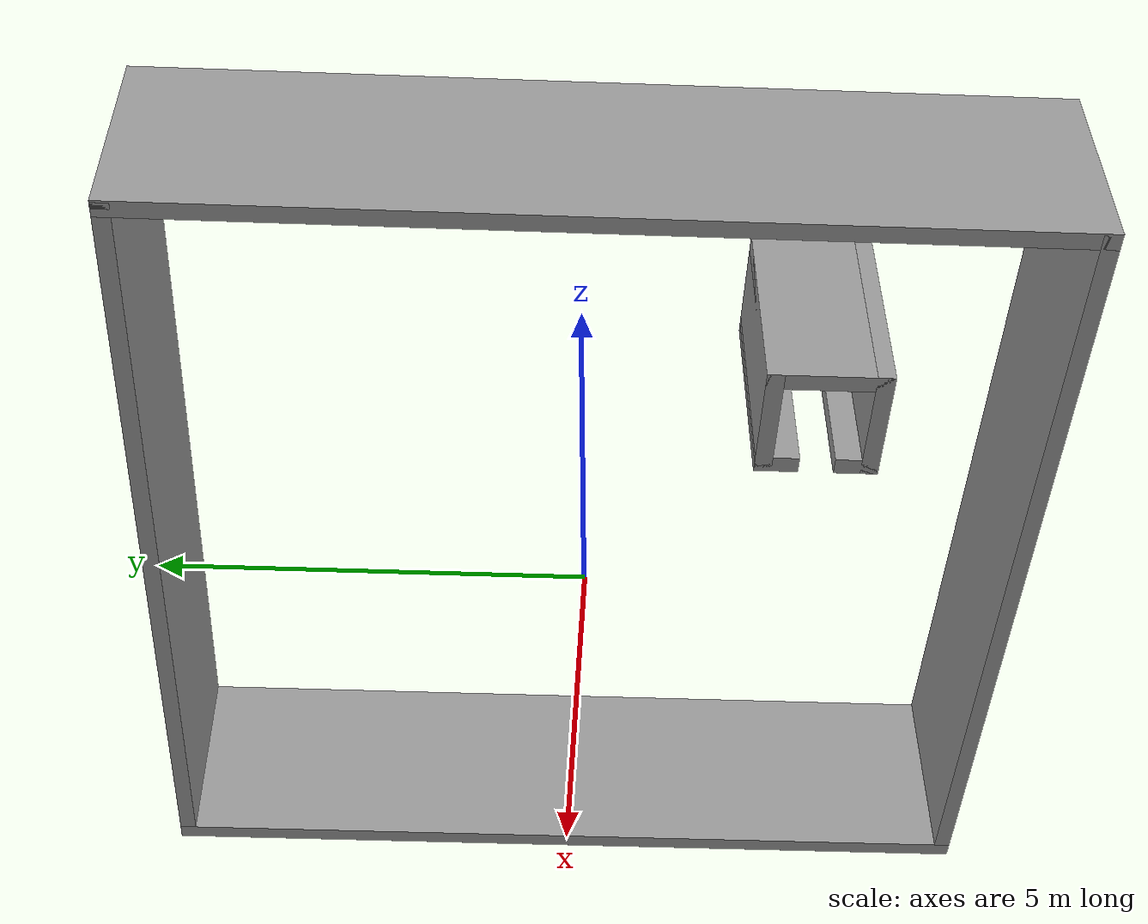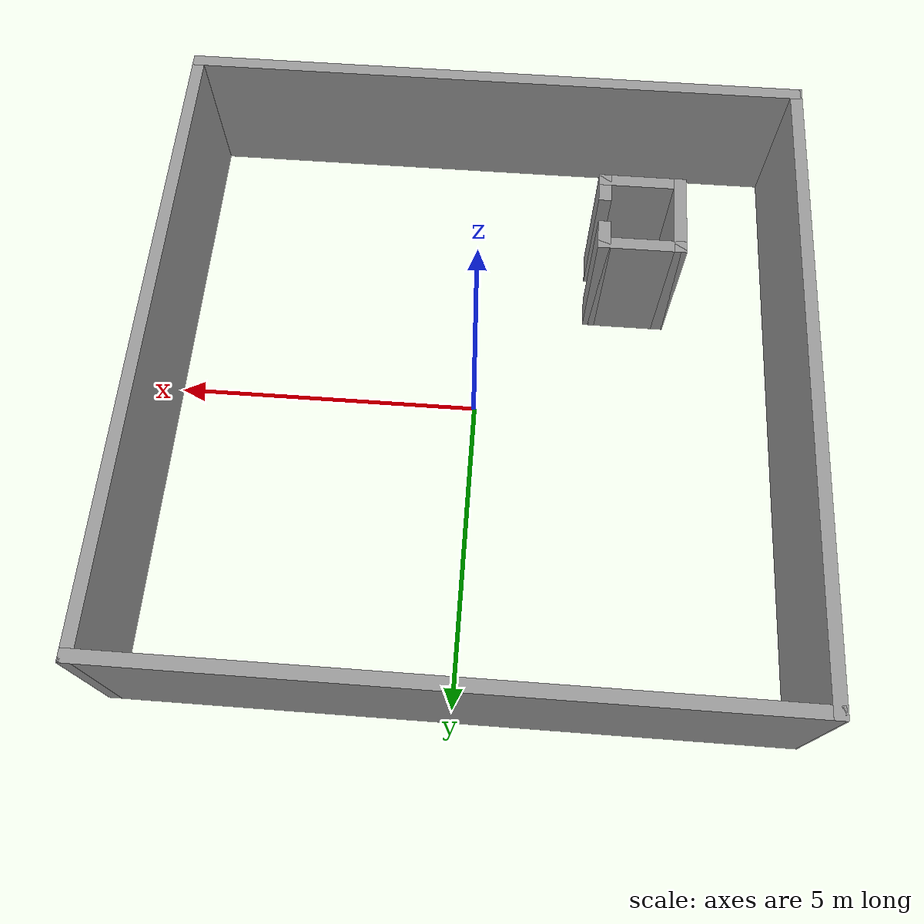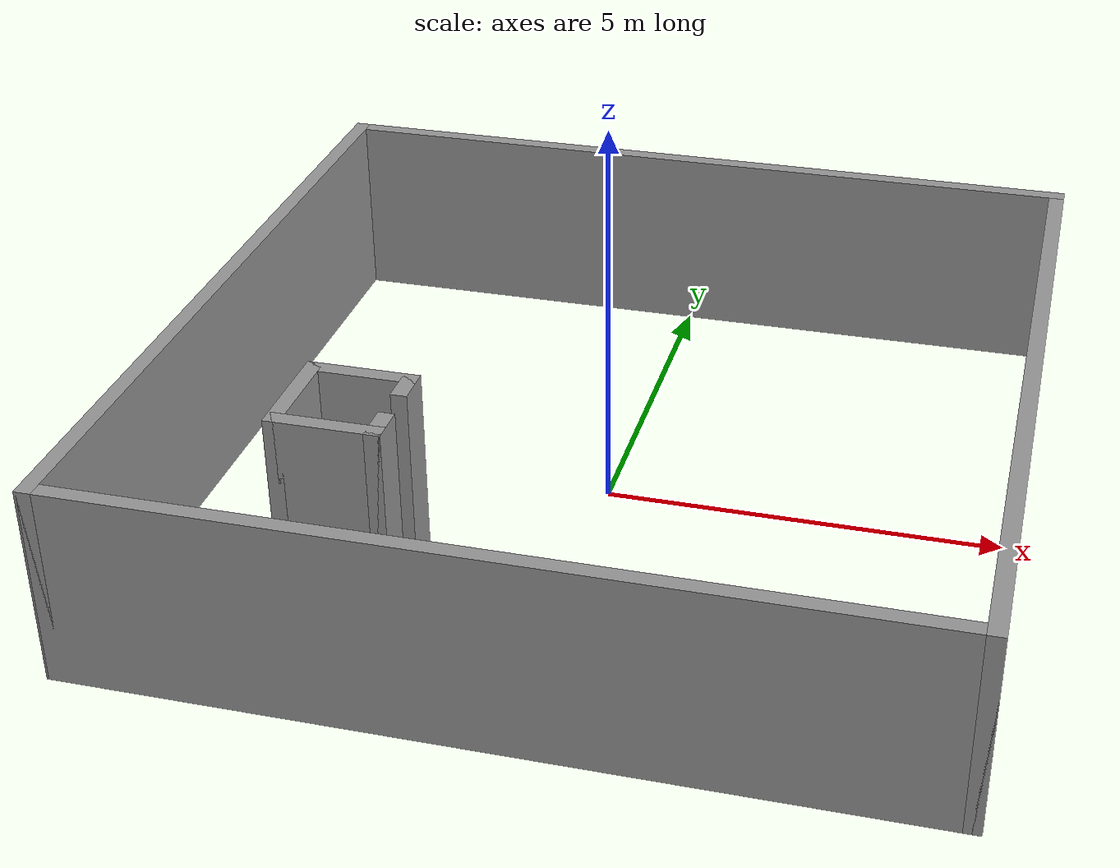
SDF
<?xml version='1.0'?>
<sdf version='1.6'>
  <model name='Room3'>
    <pose frame=''>0.011565 0 0 0 -0 0</pose>
    <link name='Wall_10'>
      <collision name='Wall_10_Collision'>
        <geometry>
          <box>
            <size>1.4 0.2 2.5</size>
          </box>
        </geometry>
        <pose frame=''>0 0 1.25 0 -0 0</pose>
      </collision>
      <visual name='Wall_10_Visual'>
        <pose frame=''>0 0 1.25 0 -0 0</pose>
        <geometry>
          <box>
            <size>1.4 0.2 2.5</size>
          </box>
        </geometry>
        <material>
          <script>
            <uri>file://media/materials/scripts/gazebo.material</uri>
            <name>Gazebo/Grey</name>
          </script>
          <ambient>1 1 1 1</ambient>
        </material>
        <meta>
          <layer>0</layer>
        </meta>
      </visual>
      <pose frame=''>-3.11157 -2.5 0 0 -0 1.5708</pose>
    </link>
    <link name='Wall_11'>
      <collision name='Wall_11_Collision'>
        <geometry>
          <box>
            <size>1.4 0.2 2.5</size>
          </box>
        </geometry>
        <pose frame=''>0 0 1.25 0 -0 0</pose>
      </collision>
      <visual name='Wall_11_Visual'>
        <pose frame=''>0 0 1.25 0 -0 0</pose>
        <geometry>
          <box>
            <size>1.4 0.2 2.5</size>
          </box>
        </geometry>
        <material>
          <script>
            <uri>file://media/materials/scripts/gazebo.material</uri>
            <name>Gazebo/Grey</name>
          </script>
          <ambient>1 1 1 1</ambient>
        </material>
        <meta>
          <layer>0</layer>
        </meta>
      </visual>
      <pose frame=''>-2.51157 -1.9 0 0 -0 0</pose>
    </link>
    <link name='Wall_12'>
      <collision name='Wall_12_Collision'>
        <geometry>
          <box>
            <size>0.5 0.2 2.5</size>
          </box>
        </geometry>
        <pose frame=''>0 0 1.25 0 -0 0</pose>
      </collision>
      <visual name='Wall_12_Visual'>
        <pose frame=''>0 0 1.25 0 -0 0</pose>
        <geometry>
          <box>
            <size>0.5 0.2 2.5</size>
          </box>
        </geometry>
        <material>
          <script>
            <uri>file://media/materials/scripts/gazebo.material</uri>
            <name>Gazebo/Grey</name>
          </script>
          <ambient>1 1 1 1</ambient>
        </material>
        <meta>
          <layer>0</layer>
        </meta>
      </visual>
      <pose frame=''>-1.91156 -2.05 0 0 -0 -1.5708</pose>
    </link>
    <link name='Wall_14'>
      <collision name='Wall_14_Collision'>
        <geometry>
          <box>
            <size>0.5 0.2 2.5</size>
          </box>
        </geometry>
        <pose frame=''>0 0 1.25 0 -0 0</pose>
      </collision>
      <visual name='Wall_14_Visual'>
        <pose frame=''>0 0 1.25 0 -0 0</pose>
        <geometry>
          <box>
            <size>0.5 0.2 2.5</size>
          </box>
        </geometry>
        <material>
          <script>
            <uri>file://media/materials/scripts/gazebo.material</uri>
            <name>Gazebo/Grey</name>
          </script>
          <ambient>1 1 1 1</ambient>
        </material>
        <meta>
          <layer>0</layer>
        </meta>
      </visual>
      <pose frame=''>-1.91156 -2.95 0 0 -0 1.5708</pose>
    </link>
    <link name='Wall_3'>
      <collision name='Wall_3_Collision'>
        <geometry>
          <box>
            <size>10.4 0.2 2.5</size>
          </box>
        </geometry>
        <pose frame=''>0 0 1.25 0 -0 0</pose>
      </collision>
      <visual name='Wall_3_Visual'>
        <pose frame=''>0 0 1.25 0 -0 0</pose>
        <geometry>
          <box>
            <size>10.4 0.2 2.5</size>
          </box>
        </geometry>
        <material>
          <script>
            <uri>file://media/materials/scripts/gazebo.material</uri>
            <name>Gazebo/Grey</name>
          </script>
          <ambient>1 1 1 1</ambient>
        </material>
        <meta>
          <layer>0</layer>
        </meta>
      </visual>
      <pose frame=''>-5.08843 0 0 0 -0 -1.5708</pose>
    </link>
    <link name='Wall_4'>
      <collision name='Wall_4_Collision'>
        <geometry>
          <box>
            <size>10.3537 0.2 2.5</size>
          </box>
        </geometry>
        <pose frame=''>0 0 1.25 0 -0 0</pose>
      </collision>
      <visual name='Wall_4_Visual'>
        <pose frame=''>0 0 1.25 0 -0 0</pose>
        <geometry>
          <box>
            <size>10.3537 0.2 2.5</size>
          </box>
        </geometry>
        <material>
          <script>
            <uri>file://media/materials/scripts/gazebo.material</uri>
            <name>Gazebo/Grey</name>
          </script>
          <ambient>1 1 1 1</ambient>
        </material>
        <meta>
          <layer>0</layer>
        </meta>
      </visual>
      <pose frame=''>0.011565 -5.1 0 0 -0 0</pose>
    </link>
    <link name='Wall_5'>
      <collision name='Wall_5_Collision'>
        <geometry>
          <box>
            <size>10.4 0.2 2.5</size>
          </box>
        </geometry>
        <pose frame=''>0 0 1.25 0 -0 0</pose>
      </collision>
      <visual name='Wall_5_Visual'>
        <pose frame=''>0 0 1.25 0 -0 0</pose>
        <geometry>
          <box>
            <size>10.4 0.2 2.5</size>
          </box>
        </geometry>
        <material>
          <script>
            <uri>file://media/materials/scripts/gazebo.material</uri>
            <name>Gazebo/Grey</name>
          </script>
          <ambient>1 1 1 1</ambient>
        </material>
        <meta>
          <layer>0</layer>
        </meta>
      </visual>
      <pose frame=''>5.08843 0 0 0 -0 1.5708</pose>
    </link>
    <link name='Wall_6'>
      <collision name='Wall_6_Collision'>
        <geometry>
          <box>
            <size>10.3537 0.2 2.5</size>
          </box>
        </geometry>
        <pose frame=''>0 0 1.25 0 -0 0</pose>
      </collision>
      <visual name='Wall_6_Visual'>
        <pose frame=''>0 0 1.25 0 -0 0</pose>
        <geometry>
          <box>
            <size>10.3537 0.2 2.5</size>
          </box>
        </geometry>
        <material>
          <script>
            <uri>file://media/materials/scripts/gazebo.material</uri>
            <name>Gazebo/Grey</name>
          </script>
          <ambient>1 1 1 1</ambient>
        </material>
        <meta>
          <layer>0</layer>
        </meta>
      </visual>
      <pose frame=''>0.011565 5.1 0 0 -0 3.14159</pose>
    </link>
    <link name='Wall_8'>
      <collision name='Wall_8_Collision'>
        <geometry>
          <box>
            <size>1.4 0.2 2.5</size>
          </box>
        </geometry>
        <pose frame=''>0 0 1.25 0 -0 0</pose>
      </collision>
      <visual name='Wall_8_Visual'>
        <pose frame=''>0 0 1.25 0 -0 0</pose>
        <geometry>
          <box>
            <size>1.4 0.2 2.5</size>
          </box>
        </geometry>
        <material>
          <script>
            <uri>file://media/materials/scripts/gazebo.material</uri>
            <name>Gazebo/Grey</name>
          </script>
          <ambient>1 1 1 1</ambient>
        </material>
        <meta>
          <layer>0</layer>
        </meta>
      </visual>
      <pose frame=''>-2.51157 -3.1 0 0 -0 0</pose>
    </link>
    <static>1</static>
  </model>
</sdf>
